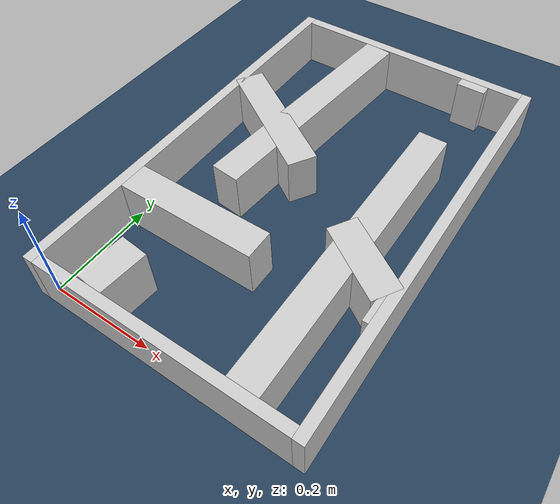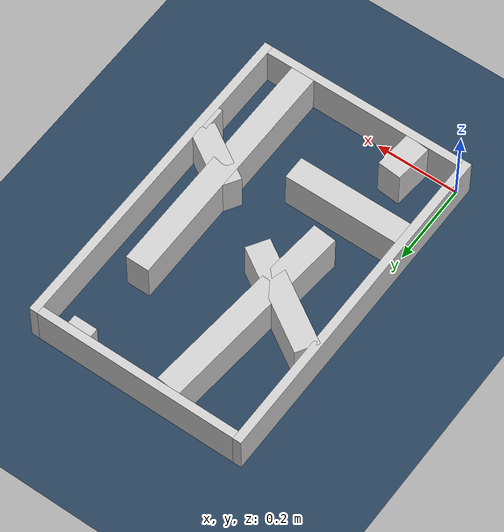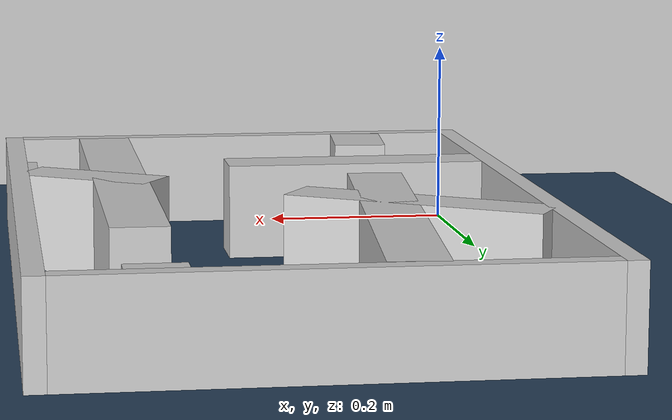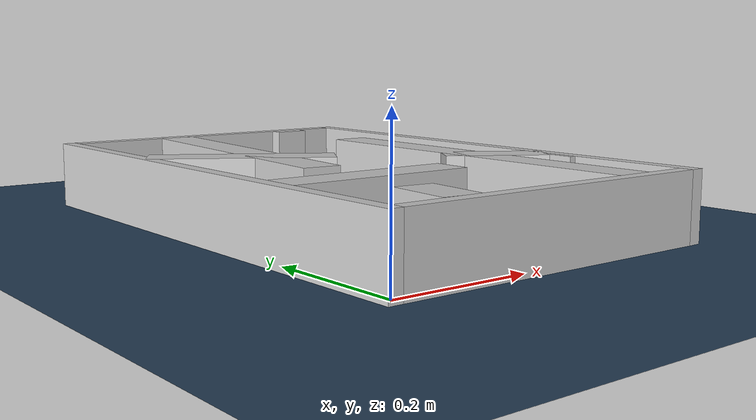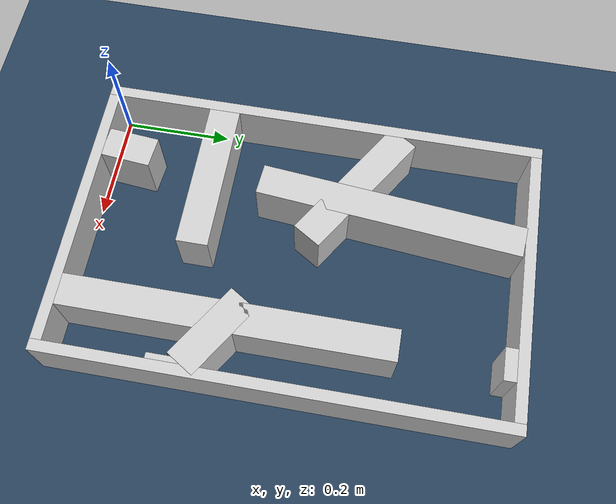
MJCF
<?xml version="1.0" ?>
<mujoco model="generated_real_template">
  <compiler angle="degree"/>
  <option timestep="0.002" integrator="implicitfast" iterations="100" cone="elliptic"/>
  <default>
    <geom density="1"/>
  </default>
  <asset>
    <texture builtin="gradient" height="3072" rgb1="0.3 0.5 0.7" rgb2="0 0 0" type="skybox" width="512"/>
    <texture builtin="checker" height="300" mark="edge" markrgb="0.8 0.8 0.8" name="groundplane" rgb1="0.2 0.3 0.4" rgb2="0.1 0.2 0.3" type="2d" width="300"/>
    <material name="groundplane" reflectance="0.2" texrepeat="5 5" texture="groundplane" texuniform="true"/>
  </asset>
  <worldbody>
    <light dir="0 0 -1" directional="true" pos="0 0 1.5"/>
    <geom name="floor" type="plane" condim="4" friction="0.5 0.005 0.001" material="groundplane" size="0 0 0.05"/>
    <body name="walls">
      <geom name="wall_boundary_left" type="box" condim="4" friction="1.0 0.005 0.0001" rgba="0.8 0.8 0.8 1" pos="-0.010000 0.387500 0.050000" euler="0 0 0.000000" size="0.010000 0.407500 0.050000"/>
      <geom name="wall_boundary_right" type="box" condim="4" friction="1.0 0.005 0.0001" rgba="0.8 0.8 0.8 1" pos="0.500000 0.387500 0.050000" euler="0 0 0.000000" size="0.010000 0.407500 0.050000"/>
      <geom name="wall_boundary_bottom" type="box" condim="4" friction="1.0 0.005 0.0001" rgba="0.8 0.8 0.8 1" pos="0.245000 -0.010000 0.050000" euler="0 0 0.000000" size="0.245000 0.010000 0.050000"/>
      <geom name="wall_boundary_top" type="box" condim="4" friction="1.0 0.005 0.0001" rgba="0.8 0.8 0.8 1" pos="0.245000 0.785000 0.050000" euler="0 0 0.000000" size="0.245000 0.010000 0.050000"/>
      <geom name="wall_inner_1_1" type="box" condim="4" friction="1.0 0.005 0.0001" rgba="0.8 0.8 0.8 1" pos="0.397142 0.291243 0.050000" euler="0 0 90.000000" size="0.291243 0.028500 0.050000"/>
      <geom name="wall_inner_1_2" type="box" condim="4" friction="1.0 0.005 0.0001" rgba="0.8 0.8 0.8 1" pos="0.397142 0.764188 0.050000" euler="0 0 90.000000" size="0.010812 0.028500 0.050000"/>
      <geom name="wall_inner_2_1" type="box" condim="4" friction="1.0 0.005 0.0001" rgba="0.8 0.8 0.8 1" pos="0.425480 0.273335 0.050000" euler="0 0 147.867436" size="0.076191 0.028500 0.050000"/>
      <geom name="wall_inner_2_2" type="box" condim="4" friction="1.0 0.005 0.0001" rgba="0.8 0.8 0.8 1" pos="0.113944 0.469009 0.050000" euler="0 0 147.867436" size="0.134555 0.028500 0.050000"/>
      <geom name="wall_inner_3_1" type="box" condim="4" friction="1.0 0.005 0.0001" rgba="0.8 0.8 0.8 1" pos="0.138015 0.203103 0.050000" euler="0 0 0.000000" size="0.138015 0.028500 0.050000"/>
      <geom name="wall_inner_3_2" type="box" condim="4" friction="1.0 0.005 0.0001" rgba="0.8 0.8 0.8 1" pos="0.484814 0.203103 0.050000" euler="0 0 0.000000" size="0.005186 0.028500 0.050000"/>
      <geom name="wall_inner_4_1" type="box" condim="4" friction="1.0 0.005 0.0001" rgba="0.8 0.8 0.8 1" pos="0.152129 0.535581 0.050000" euler="0 0 -95.331682" size="0.240459 0.028500 0.050000"/>
      <geom name="wall_inner_4_2" type="box" condim="4" friction="1.0 0.005 0.0001" rgba="0.8 0.8 0.8 1" pos="0.106481 0.046454 0.050000" euler="0 0 -95.331682" size="0.046656 0.028500 0.050000"/>
    </body>
  </worldbody>
</mujoco>
